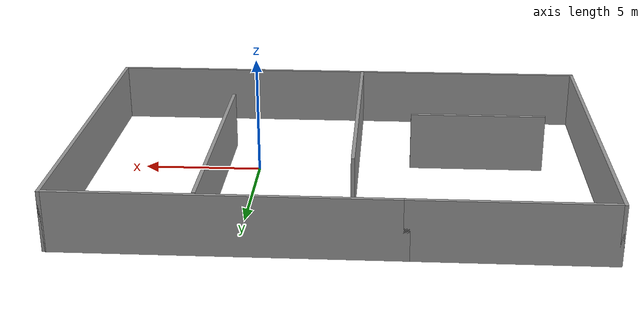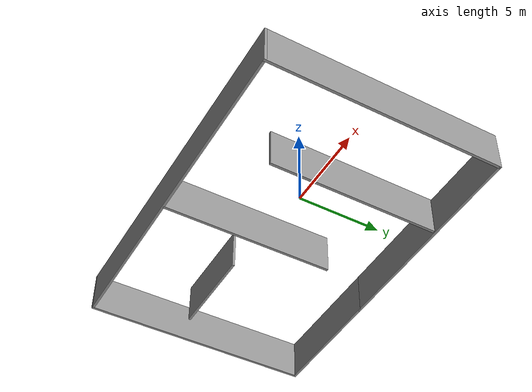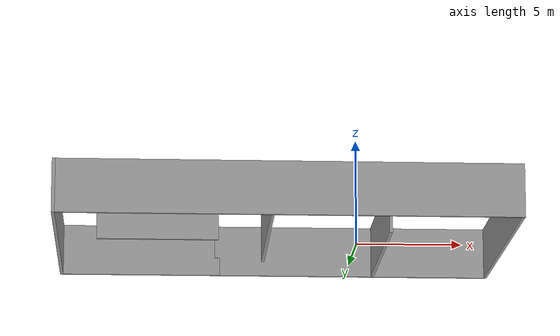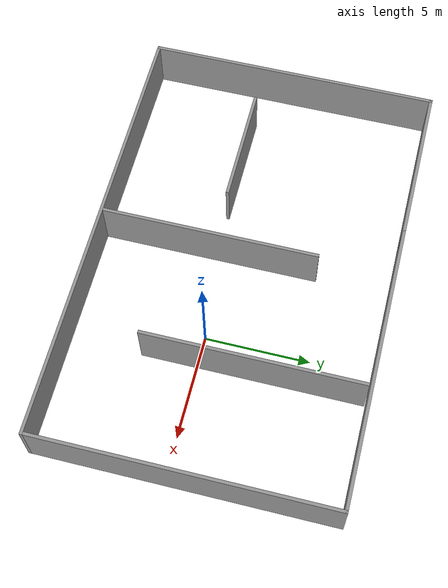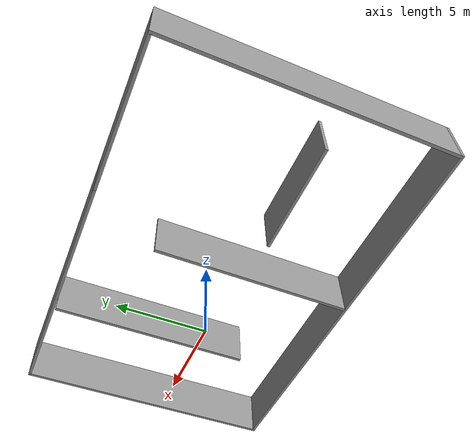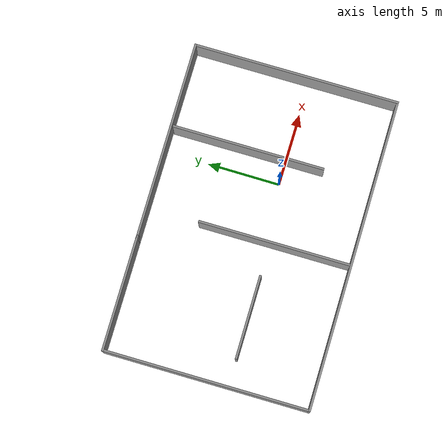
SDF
<?xml version='1.0'?>
<sdf version='1.7'>
  <model name='world'>
    <pose>-3.52006 0.905704 0 0 -0 0</pose>
    <link name='Wall_17'>
      <collision name='Wall_17_Collision'>
        <geometry>
          <box>
            <size>10.5 0.15 2.5</size>
          </box>
        </geometry>
        <pose>0 0 1.25 0 -0 0</pose>
      </collision>
      <visual name='Wall_17_Visual'>
        <pose>0 0 1.25 0 -0 0</pose>
        <geometry>
          <box>
            <size>10.5 0.15 2.5</size>
          </box>
        </geometry>
        <material>
          <script>
            <uri>file://media/materials/scripts/gazebo.material</uri>
            <name>Gazebo/Grey</name>
          </script>
          <ambient>1 1 1 1</ambient>
        </material>
        <meta>
          <layer>0</layer>
        </meta>
      </visual>
      <pose>4.94671 1.6731 0 0 -0 -1.5708</pose>
    </link>
    <link name='Wall_20'>
      <collision name='Wall_20_Collision'>
        <geometry>
          <box>
            <size>10.5 0.15 2.5</size>
          </box>
        </geometry>
        <pose>0 0 1.25 0 -0 0</pose>
      </collision>
      <visual name='Wall_20_Visual'>
        <pose>0 0 1.25 0 -0 0</pose>
        <geometry>
          <box>
            <size>10.5 0.15 2.5</size>
          </box>
        </geometry>
        <material>
          <script>
            <uri>file://media/materials/scripts/gazebo.material</uri>
            <name>Gazebo/Grey</name>
          </script>
          <ambient>1 1 1 1</ambient>
        </material>
        <meta>
          <layer>0</layer>
        </meta>
      </visual>
      <pose>-0.742082 -1.78962 0 0 -0 -1.5708</pose>
    </link>
    <link name='Wall_22'>
      <collision name='Wall_22_Collision'>
        <geometry>
          <box>
            <size>5.75 0.15 2.5</size>
          </box>
        </geometry>
        <pose>0 0 1.25 0 -0 0</pose>
      </collision>
      <visual name='Wall_22_Visual'>
        <pose>0 0 1.25 0 -0 0</pose>
        <geometry>
          <box>
            <size>5.75 0.15 2.5</size>
          </box>
        </geometry>
        <material>
          <script>
            <uri>file://media/materials/scripts/gazebo.material</uri>
            <name>Gazebo/Grey</name>
          </script>
          <ambient>1 1 1 1</ambient>
        </material>
        <meta>
          <layer>0</layer>
        </meta>
      </visual>
      <pose>-5.92353 -1.49686 0 0 -0 0</pose>
    </link>
    <link name='Wall_4'>
      <collision name='Wall_4_Collision'>
        <geometry>
          <box>
            <size>13.75 0.15 2.5</size>
          </box>
        </geometry>
        <pose>0 0 1.25 0 -0 0</pose>
      </collision>
      <visual name='Wall_4_Visual'>
        <pose>0 0 1.25 0 -0 0</pose>
        <geometry>
          <box>
            <size>13.75 0.15 2.5</size>
          </box>
        </geometry>
        <material>
          <script>
            <uri>file://media/materials/scripts/gazebo.material</uri>
            <name>Gazebo/Grey</name>
          </script>
          <ambient>1 1 1 1</ambient>
        </material>
        <meta>
          <layer>0</layer>
        </meta>
      </visual>
      <pose>3.875 7.05 0 0 -0 0</pose>
    </link>
    <link name='Wall_5'>
      <collision name='Wall_5_Collision'>
        <geometry>
          <box>
            <size>14.25 0.15 2.5</size>
          </box>
        </geometry>
        <pose>0 0 1.25 0 -0 0</pose>
      </collision>
      <visual name='Wall_5_Visual'>
        <pose>0 0 1.25 0 -0 0</pose>
        <geometry>
          <box>
            <size>14.25 0.15 2.5</size>
          </box>
        </geometry>
        <material>
          <script>
            <uri>file://media/materials/scripts/gazebo.material</uri>
            <name>Gazebo/Grey</name>
          </script>
          <ambient>1 1 1 1</ambient>
        </material>
        <meta>
          <layer>0</layer>
        </meta>
      </visual>
      <pose>10.675 0 0 0 -0 -1.5708</pose>
    </link>
    <link name='Wall_6'>
      <collision name='Wall_6_Collision'>
        <geometry>
          <box>
            <size>21.5 0.15 2.5</size>
          </box>
        </geometry>
        <pose>0 0 1.25 0 -0 0</pose>
      </collision>
      <visual name='Wall_6_Visual'>
        <pose>0 0 1.25 0 -0 0</pose>
        <geometry>
          <box>
            <size>21.5 0.15 2.5</size>
          </box>
        </geometry>
        <material>
          <script>
            <uri>file://media/materials/scripts/gazebo.material</uri>
            <name>Gazebo/Grey</name>
          </script>
          <ambient>1 1 1 1</ambient>
        </material>
        <meta>
          <layer>0</layer>
        </meta>
      </visual>
      <pose>-0 -7.05 0 0 -0 3.14159</pose>
    </link>
    <link name='Wall_7'>
      <collision name='Wall_7_Collision'>
        <geometry>
          <box>
            <size>14.25 0.15 2.5</size>
          </box>
        </geometry>
        <pose>0 0 1.25 0 -0 0</pose>
      </collision>
      <visual name='Wall_7_Visual'>
        <pose>0 0 1.25 0 -0 0</pose>
        <geometry>
          <box>
            <size>14.25 0.15 2.5</size>
          </box>
        </geometry>
        <material>
          <script>
            <uri>file://media/materials/scripts/gazebo.material</uri>
            <name>Gazebo/Grey</name>
          </script>
          <ambient>1 1 1 1</ambient>
        </material>
        <meta>
          <layer>0</layer>
        </meta>
      </visual>
      <pose>-10.675 0 0 0 -0 1.5708</pose>
    </link>
    <link name='Wall_8'>
      <collision name='Wall_8_Collision'>
        <geometry>
          <box>
            <size>8 0.15 2.5</size>
          </box>
        </geometry>
        <pose>0 0 1.25 0 -0 0</pose>
      </collision>
      <visual name='Wall_8_Visual'>
        <pose>0 0 1.25 0 -0 0</pose>
        <geometry>
          <box>
            <size>8 0.15 2.5</size>
          </box>
        </geometry>
        <material>
          <script>
            <uri>file://media/materials/scripts/gazebo.material</uri>
            <name>Gazebo/Grey</name>
          </script>
          <ambient>1 1 1 1</ambient>
        </material>
        <meta>
          <layer>0</layer>
        </meta>
      </visual>
      <pose>-6.75 7.05 0 0 -0 0</pose>
    </link>
    <static>1</static>
  </model>
</sdf>
